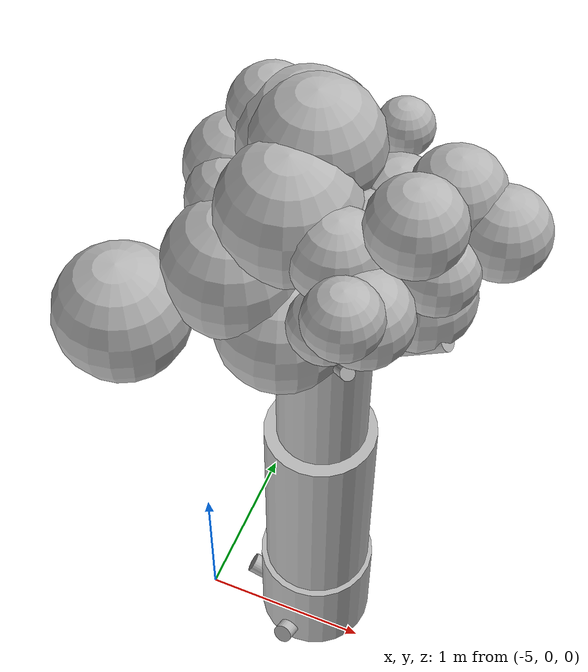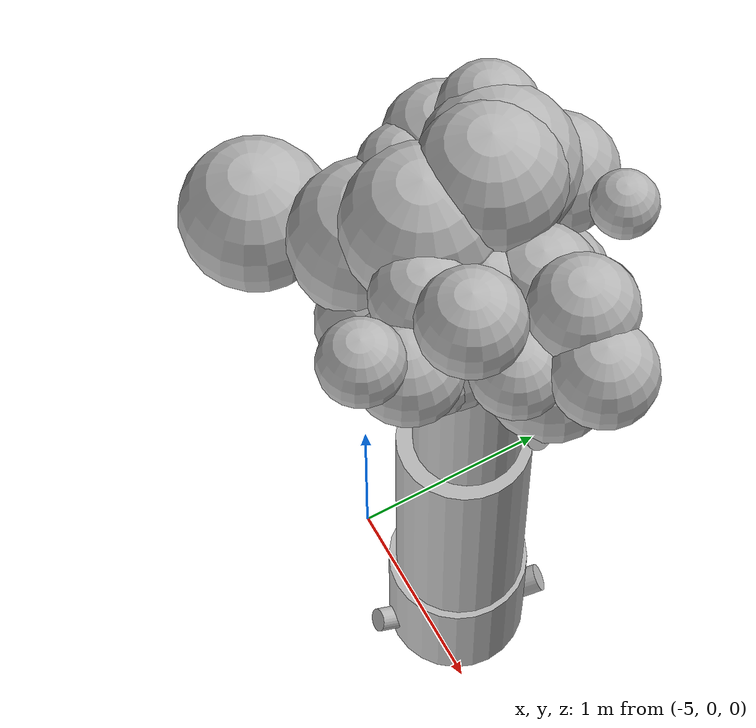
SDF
<sdf version="1.6">
 <world name="default">
  <model name="tree_1">
   <static>true</static>
   <pose>-4.3520 0.1640 0 0 0 0</pose>
   <link name="trunk">
    <pose>0 0 1.5000 0 0 0</pose>
    <collision name="trunk_c">
     <geometry><cylinder><radius>0.3500</radius><length>3.0000</length></cylinder></geometry>
    </collision>
   </link>
   <link name="trunk_v0">
    <pose>0.0000 0.0014 0.3100 0 0 0</pose>
    <visual name="trunk_v0_v">
     <geometry><cylinder><radius>0.3448</radius><length>0.6448</length></cylinder></geometry>
     <material>
      <script>
       <uri>model://bushfire/materials/scripts</uri>
       <uri>model://bushfire/materials/textures</uri>
       <name>Bushfire/CharBark</name>
      </script>
     </material>
    </visual>
   </link>
   <link name="trunk_v1">
    <pose>0.0003 0.0097 1.2700 0 0 0</pose>
    <visual name="trunk_v1_v">
     <geometry><cylinder><radius>0.3150</radius><length>1.3520</length></cylinder></geometry>
     <material>
      <script>
       <uri>model://bushfire/materials/scripts</uri>
       <uri>model://bushfire/materials/textures</uri>
       <name>Bushfire/BarkSmooth</name>
      </script>
     </material>
    </visual>
   </link>
   <link name="trunk_v2">
    <pose>0.0009 0.0246 2.4600 0 0 0</pose>
    <visual name="trunk_v2_v">
     <geometry><cylinder><radius>0.2520</radius><length>1.1232</length></cylinder></geometry>
     <material>
      <script>
       <uri>model://bushfire/materials/scripts</uri>
       <uri>model://bushfire/materials/textures</uri>
       <name>Bushfire/BarkSmooth</name>
      </script>
     </material>
    </visual>
   </link>
   <link name="root0">
    <pose>-0.0287 -0.2383 0.09 0 1.150 4.592</pose>
    <visual name="root0_v">
     <geometry><cylinder><radius>0.0587</radius><length>0.4200</length></cylinder></geometry>
     <material>
      <script>
       <uri>model://bushfire/materials/scripts</uri>
       <uri>model://bushfire/materials/textures</uri>
       <name>Bushfire/CharBark</name>
      </script>
     </material>
    </visual>
   </link>
   <link name="root1">
    <pose>-0.2395 -0.0158 0.09 0 1.150 3.207</pose>
    <visual name="root1_v">
     <geometry><cylinder><radius>0.0625</radius><length>0.4200</length></cylinder></geometry>
     <material>
      <script>
       <uri>model://bushfire/materials/scripts</uri>
       <uri>model://bushfire/materials/textures</uri>
       <name>Bushfire/CharBark</name>
      </script>
     </material>
    </visual>
   </link>
   <link name="root2">
    <pose>0.0774 0.2272 0.09 0 1.150 1.242</pose>
    <visual name="root2_v">
     <geometry><cylinder><radius>0.0709</radius><length>0.4200</length></cylinder></geometry>
     <material>
      <script>
       <uri>model://bushfire/materials/scripts</uri>
       <uri>model://bushfire/materials/textures</uri>
       <name>Bushfire/CharBark</name>
      </script>
     </material>
    </visual>
   </link>
   <link name="root3">
    <pose>-0.2213 0.0929 0.09 0 1.150 2.744</pose>
    <visual name="root3_v">
     <geometry><cylinder><radius>0.0663</radius><length>0.4200</length></cylinder></geometry>
     <material>
      <script>
       <uri>model://bushfire/materials/scripts</uri>
       <uri>model://bushfire/materials/textures</uri>
       <name>Bushfire/CharBark</name>
      </script>
     </material>
    </visual>
   </link>
   <link name="branch0">
    <pose>0.1611 -0.2607 2.9686 0 0.7538 5.2658</pose>
    <visual name="branch0_v">
     <geometry><cylinder><radius>0.0355</radius><length>0.8955</length></cylinder></geometry>
     <material>
      <script>
       <uri>model://bushfire/materials/scripts</uri>
       <uri>model://bushfire/materials/textures</uri>
       <name>Bushfire/BarkSmooth</name>
      </script>
     </material>
    </visual>
   </link>
   <link name="branch1">
    <pose>0.3194 -0.0129 2.8717 0 0.9526 6.2427</pose>
    <visual name="branch1_v">
     <geometry><cylinder><radius>0.0529</radius><length>0.7847</length></cylinder></geometry>
     <material>
      <script>
       <uri>model://bushfire/materials/scripts</uri>
       <uri>model://bushfire/materials/textures</uri>
       <name>Bushfire/BarkSmooth</name>
      </script>
     </material>
    </visual>
   </link>
   <link name="branch2">
    <pose>0.0136 0.2046 2.7906 0 0.7192 7.7876</pose>
    <visual name="branch2_v">
     <geometry><cylinder><radius>0.0523</radius><length>0.6225</length></cylinder></geometry>
     <material>
      <script>
       <uri>model://bushfire/materials/scripts</uri>
       <uri>model://bushfire/materials/textures</uri>
       <name>Bushfire/BarkSmooth</name>
      </script>
     </material>
    </visual>
   </link>
   <link name="branch3">
    <pose>-0.2010 0.1639 2.9271 0 0.9724 8.7409</pose>
    <visual name="branch3_v">
     <geometry><cylinder><radius>0.0522</radius><length>0.6278</length></cylinder></geometry>
     <material>
      <script>
       <uri>model://bushfire/materials/scripts</uri>
       <uri>model://bushfire/materials/textures</uri>
       <name>Bushfire/BarkSmooth</name>
      </script>
     </material>
    </visual>
   </link>
   <link name="branch4">
    <pose>-0.2190 -0.1281 2.6844 0 0.8034 9.9541</pose>
    <visual name="branch4_v">
     <geometry><cylinder><radius>0.0535</radius><length>0.7052</length></cylinder></geometry>
     <material>
      <script>
       <uri>model://bushfire/materials/scripts</uri>
       <uri>model://bushfire/materials/textures</uri>
       <name>Bushfire/BarkSmooth</name>
      </script>
     </material>
    </visual>
   </link>
   <link name="foliage0">
    <pose>0.3440 -0.6809 3.8784 0 0 0</pose>
    <visual name="foliage0_v">
     <geometry><sphere><radius>0.1795</radius></sphere></geometry>
     <material>
      <script>
       <uri>model://bushfire/materials/scripts</uri>
       <uri>model://bushfire/materials/textures</uri>
       <name>Bushfire/Foliage1</name>
      </script>
     </material>
    </visual>
   </link>
   <link name="foliage1">
    <pose>0.2793 0.1644 3.6859 0 0 0</pose>
    <visual name="foliage1_v">
     <geometry><sphere><radius>0.2405</radius></sphere></geometry>
     <material>
      <script>
       <uri>model://bushfire/materials/scripts</uri>
       <uri>model://bushfire/materials/textures</uri>
       <name>Bushfire/Foliage0</name>
      </script>
     </material>
    </visual>
   </link>
   <link name="foliage2">
    <pose>0.0155 0.0934 3.5349 0 0 0</pose>
    <visual name="foliage2_v">
     <geometry><sphere><radius>0.2929</radius></sphere></geometry>
     <material>
      <script>
       <uri>model://bushfire/materials/scripts</uri>
       <uri>model://bushfire/materials/textures</uri>
       <name>Bushfire/Foliage2</name>
      </script>
     </material>
    </visual>
   </link>
   <link name="foliage3">
    <pose>-0.5102 -0.0180 3.1314 0 0 0</pose>
    <visual name="foliage3_v">
     <geometry><sphere><radius>0.1738</radius></sphere></geometry>
     <material>
      <script>
       <uri>model://bushfire/materials/scripts</uri>
       <uri>model://bushfire/materials/textures</uri>
       <name>Bushfire/Foliage1</name>
      </script>
     </material>
    </visual>
   </link>
   <link name="foliage4">
    <pose>-0.7681 -0.5862 3.2790 0 0 0</pose>
    <visual name="foliage4_v">
     <geometry><sphere><radius>0.3312</radius></sphere></geometry>
     <material>
      <script>
       <uri>model://bushfire/materials/scripts</uri>
       <uri>model://bushfire/materials/textures</uri>
       <name>Bushfire/Foliage0</name>
      </script>
     </material>
    </visual>
   </link>
   <link name="foliage5">
    <pose>0.1747 -0.3087 3.7921 0 0 0</pose>
    <visual name="foliage5_v">
     <geometry><sphere><radius>0.2258</radius></sphere></geometry>
     <material>
      <script>
       <uri>model://bushfire/materials/scripts</uri>
       <uri>model://bushfire/materials/textures</uri>
       <name>Bushfire/Foliage0</name>
      </script>
     </material>
    </visual>
   </link>
   <link name="foliage6">
    <pose>0.2466 -0.2264 3.3403 0 0 0</pose>
    <visual name="foliage6_v">
     <geometry><sphere><radius>0.2214</radius></sphere></geometry>
     <material>
      <script>
       <uri>model://bushfire/materials/scripts</uri>
       <uri>model://bushfire/materials/textures</uri>
       <name>Bushfire/Foliage1</name>
      </script>
     </material>
    </visual>
   </link>
   <link name="foliage7">
    <pose>-0.1888 0.0501 2.9010 0 0 0</pose>
    <visual name="foliage7_v">
     <geometry><sphere><radius>0.2425</radius></sphere></geometry>
     <material>
      <script>
       <uri>model://bushfire/materials/scripts</uri>
       <uri>model://bushfire/materials/textures</uri>
       <name>Bushfire/Foliage0</name>
      </script>
     </material>
    </visual>
   </link>
   <link name="foliage8">
    <pose>-0.2701 0.5789 3.3927 0 0 0</pose>
    <visual name="foliage8_v">
     <geometry><sphere><radius>0.2661</radius></sphere></geometry>
     <material>
      <script>
       <uri>model://bushfire/materials/scripts</uri>
       <uri>model://bushfire/materials/textures</uri>
       <name>Bushfire/Foliage2</name>
      </script>
     </material>
    </visual>
   </link>
   <link name="foliage9">
    <pose>-0.1596 -0.2352 3.0855 0 0 0</pose>
    <visual name="foliage9_v">
     <geometry><sphere><radius>0.2930</radius></sphere></geometry>
     <material>
      <script>
       <uri>model://bushfire/materials/scripts</uri>
       <uri>model://bushfire/materials/textures</uri>
       <name>Bushfire/Foliage0</name>
      </script>
     </material>
    </visual>
   </link>
   <link name="foliage10">
    <pose>0.5012 -0.2913 4.1055 0 0 0</pose>
    <visual name="foliage10_v">
     <geometry><sphere><radius>0.2209</radius></sphere></geometry>
     <material>
      <script>
       <uri>model://bushfire/materials/scripts</uri>
       <uri>model://bushfire/materials/textures</uri>
       <name>Bushfire/Foliage2</name>
      </script>
     </material>
    </visual>
   </link>
   <link name="foliage11">
    <pose>0.7737 0.1564 3.7251 0 0 0</pose>
    <visual name="foliage11_v">
     <geometry><sphere><radius>0.2209</radius></sphere></geometry>
     <material>
      <script>
       <uri>model://bushfire/materials/scripts</uri>
       <uri>model://bushfire/materials/textures</uri>
       <name>Bushfire/Foliage0</name>
      </script>
     </material>
    </visual>
   </link>
   <link name="foliage12">
    <pose>-0.1072 0.1436 3.9347 0 0 0</pose>
    <visual name="foliage12_v">
     <geometry><sphere><radius>0.3184</radius></sphere></geometry>
     <material>
      <script>
       <uri>model://bushfire/materials/scripts</uri>
       <uri>model://bushfire/materials/textures</uri>
       <name>Bushfire/Foliage2</name>
      </script>
     </material>
    </visual>
   </link>
   <link name="foliage13">
    <pose>-0.3051 0.4366 3.1929 0 0 0</pose>
    <visual name="foliage13_v">
     <geometry><sphere><radius>0.1993</radius></sphere></geometry>
     <material>
      <script>
       <uri>model://bushfire/materials/scripts</uri>
       <uri>model://bushfire/materials/textures</uri>
       <name>Bushfire/Foliage1</name>
      </script>
     </material>
    </visual>
   </link>
   <link name="foliage14">
    <pose>-0.3365 -0.2851 3.4700 0 0 0</pose>
    <visual name="foliage14_v">
     <geometry><sphere><radius>0.3410</radius></sphere></geometry>
     <material>
      <script>
       <uri>model://bushfire/materials/scripts</uri>
       <uri>model://bushfire/materials/textures</uri>
       <name>Bushfire/Foliage2</name>
      </script>
     </material>
    </visual>
   </link>
   <link name="foliage15">
    <pose>0.0689 -0.1758 3.2697 0 0 0</pose>
    <visual name="foliage15_v">
     <geometry><sphere><radius>0.1621</radius></sphere></geometry>
     <material>
      <script>
       <uri>model://bushfire/materials/scripts</uri>
       <uri>model://bushfire/materials/textures</uri>
       <name>Bushfire/Foliage0</name>
      </script>
     </material>
    </visual>
   </link>
   <link name="foliage16">
    <pose>0.2857 -0.3200 3.3573 0 0 0</pose>
    <visual name="foliage16_v">
     <geometry><sphere><radius>0.1784</radius></sphere></geometry>
     <material>
      <script>
       <uri>model://bushfire/materials/scripts</uri>
       <uri>model://bushfire/materials/textures</uri>
       <name>Bushfire/Foliage0</name>
      </script>
     </material>
    </visual>
   </link>
   <link name="foliage17">
    <pose>-0.1375 0.1183 3.3253 0 0 0</pose>
    <visual name="foliage17_v">
     <geometry><sphere><radius>0.2482</radius></sphere></geometry>
     <material>
      <script>
       <uri>model://bushfire/materials/scripts</uri>
       <uri>model://bushfire/materials/textures</uri>
       <name>Bushfire/Foliage2</name>
      </script>
     </material>
    </visual>
   </link>
   <link name="foliage18">
    <pose>0.0077 0.3620 3.0447 0 0 0</pose>
    <visual name="foliage18_v">
     <geometry><sphere><radius>0.3025</radius></sphere></geometry>
     <material>
      <script>
       <uri>model://bushfire/materials/scripts</uri>
       <uri>model://bushfire/materials/textures</uri>
       <name>Bushfire/Foliage2</name>
      </script>
     </material>
    </visual>
   </link>
   <link name="foliage19">
    <pose>-0.0864 -0.3089 3.1983 0 0 0</pose>
    <visual name="foliage19_v">
     <geometry><sphere><radius>0.3286</radius></sphere></geometry>
     <material>
      <script>
       <uri>model://bushfire/materials/scripts</uri>
       <uri>model://bushfire/materials/textures</uri>
       <name>Bushfire/Foliage0</name>
      </script>
     </material>
    </visual>
   </link>
   <link name="foliage20">
    <pose>0.3713 -0.4892 3.6793 0 0 0</pose>
    <visual name="foliage20_v">
     <geometry><sphere><radius>0.2257</radius></sphere></geometry>
     <material>
      <script>
       <uri>model://bushfire/materials/scripts</uri>
       <uri>model://bushfire/materials/textures</uri>
       <name>Bushfire/Foliage1</name>
      </script>
     </material>
    </visual>
   </link>
   <link name="foliage21">
    <pose>0.5667 -0.1117 3.6535 0 0 0</pose>
    <visual name="foliage21_v">
     <geometry><sphere><radius>0.1967</radius></sphere></geometry>
     <material>
      <script>
       <uri>model://bushfire/materials/scripts</uri>
       <uri>model://bushfire/materials/textures</uri>
       <name>Bushfire/Foliage2</name>
      </script>
     </material>
    </visual>
   </link>
   <link name="foliage22">
    <pose>0.1419 0.6297 3.7035 0 0 0</pose>
    <visual name="foliage22_v">
     <geometry><sphere><radius>0.1444</radius></sphere></geometry>
     <material>
      <script>
       <uri>model://bushfire/materials/scripts</uri>
       <uri>model://bushfire/materials/textures</uri>
       <name>Bushfire/Foliage2</name>
      </script>
     </material>
    </visual>
   </link>
   <link name="foliage23">
    <pose>-0.3819 0.2941 3.9153 0 0 0</pose>
    <visual name="foliage23_v">
     <geometry><sphere><radius>0.2177</radius></sphere></geometry>
     <material>
      <script>
       <uri>model://bushfire/materials/scripts</uri>
       <uri>model://bushfire/materials/textures</uri>
       <name>Bushfire/Foliage2</name>
      </script>
     </material>
    </visual>
   </link>
   <link name="foliage24">
    <pose>-0.2391 -0.0207 3.6347 0 0 0</pose>
    <visual name="foliage24_v">
     <geometry><sphere><radius>0.2034</radius></sphere></geometry>
     <material>
      <script>
       <uri>model://bushfire/materials/scripts</uri>
       <uri>model://bushfire/materials/textures</uri>
       <name>Bushfire/Foliage0</name>
      </script>
     </material>
    </visual>
   </link>
   <link name="foliage25">
    <pose>0.2102 -0.0431 3.7099 0 0 0</pose>
    <visual name="foliage25_v">
     <geometry><sphere><radius>0.1882</radius></sphere></geometry>
     <material>
      <script>
       <uri>model://bushfire/materials/scripts</uri>
       <uri>model://bushfire/materials/textures</uri>
       <name>Bushfire/Foliage2</name>
      </script>
     </material>
    </visual>
   </link>
   <link name="foliage26">
    <pose>0.4674 0.2840 3.7079 0 0 0</pose>
    <visual name="foliage26_v">
     <geometry><sphere><radius>0.1885</radius></sphere></geometry>
     <material>
      <script>
       <uri>model://bushfire/materials/scripts</uri>
       <uri>model://bushfire/materials/textures</uri>
       <name>Bushfire/Foliage0</name>
      </script>
     </material>
    </visual>
   </link>
   <link name="foliage27">
    <pose>-0.0066 0.1529 3.4445 0 0 0</pose>
    <visual name="foliage27_v">
     <geometry><sphere><radius>0.1494</radius></sphere></geometry>
     <material>
      <script>
       <uri>model://bushfire/materials/scripts</uri>
       <uri>model://bushfire/materials/textures</uri>
       <name>Bushfire/Foliage0</name>
      </script>
     </material>
    </visual>
   </link>
   <link name="foliage28">
    <pose>-0.5035 0.1543 3.6419 0 0 0</pose>
    <visual name="foliage28_v">
     <geometry><sphere><radius>0.2604</radius></sphere></geometry>
     <material>
      <script>
       <uri>model://bushfire/materials/scripts</uri>
       <uri>model://bushfire/materials/textures</uri>
       <name>Bushfire/Foliage2</name>
      </script>
     </material>
    </visual>
   </link>
   <link name="foliage29">
    <pose>-0.1138 -0.1562 3.7990 0 0 0</pose>
    <visual name="foliage29_v">
     <geometry><sphere><radius>0.3405</radius></sphere></geometry>
     <material>
      <script>
       <uri>model://bushfire/materials/scripts</uri>
       <uri>model://bushfire/materials/textures</uri>
       <name>Bushfire/Foliage2</name>
      </script>
     </material>
    </visual>
   </link>
   <link name="foliage30">
    <pose>0.1298 -0.2288 3.6929 0 0 0</pose>
    <visual name="foliage30_v">
     <geometry><sphere><radius>0.2013</radius></sphere></geometry>
     <material>
      <script>
       <uri>model://bushfire/materials/scripts</uri>
       <uri>model://bushfire/materials/textures</uri>
       <name>Bushfire/Foliage1</name>
      </script>
     </material>
    </visual>
   </link>
   <link name="foliage31">
    <pose>0.4372 0.1384 3.1605 0 0 0</pose>
    <visual name="foliage31_v">
     <geometry><sphere><radius>0.2802</radius></sphere></geometry>
     <material>
      <script>
       <uri>model://bushfire/materials/scripts</uri>
       <uri>model://bushfire/materials/textures</uri>
       <name>Bushfire/Foliage1</name>
      </script>
     </material>
    </visual>
   </link>
   <link name="foliage32">
    <pose>-0.1843 0.2289 3.8554 0 0 0</pose>
    <visual name="foliage32_v">
     <geometry><sphere><radius>0.3369</radius></sphere></geometry>
     <material>
      <script>
       <uri>model://bushfire/materials/scripts</uri>
       <uri>model://bushfire/materials/textures</uri>
       <name>Bushfire/Foliage2</name>
      </script>
     </material>
    </visual>
   </link>
   <link name="foliage33">
    <pose>-0.4459 -0.0357 3.6247 0 0 0</pose>
    <visual name="foliage33_v">
     <geometry><sphere><radius>0.2249</radius></sphere></geometry>
     <material>
      <script>
       <uri>model://bushfire/materials/scripts</uri>
       <uri>model://bushfire/materials/textures</uri>
       <name>Bushfire/Foliage0</name>
      </script>
     </material>
    </visual>
   </link>
   <link name="foliage34">
    <pose>-0.3798 0.0400 2.9597 0 0 0</pose>
    <visual name="foliage34_v">
     <geometry><sphere><radius>0.3234</radius></sphere></geometry>
     <material>
      <script>
       <uri>model://bushfire/materials/scripts</uri>
       <uri>model://bushfire/materials/textures</uri>
       <name>Bushfire/Foliage0</name>
      </script>
     </material>
    </visual>
   </link>
   <link name="foliage35">
    <pose>0.1947 -0.4693 3.5194 0 0 0</pose>
    <visual name="foliage35_v">
     <geometry><sphere><radius>0.1815</radius></sphere></geometry>
     <material>
      <script>
       <uri>model://bushfire/materials/scripts</uri>
       <uri>model://bushfire/materials/textures</uri>
       <name>Bushfire/Foliage2</name>
      </script>
     </material>
    </visual>
   </link>
   <link name="foliage36">
    <pose>0.5366 0.1940 3.8305 0 0 0</pose>
    <visual name="foliage36_v">
     <geometry><sphere><radius>0.2293</radius></sphere></geometry>
     <material>
      <script>
       <uri>model://bushfire/materials/scripts</uri>
       <uri>model://bushfire/materials/textures</uri>
       <name>Bushfire/Foliage0</name>
      </script>
     </material>
    </visual>
   </link>
  </model>
 </world>
</sdf>
